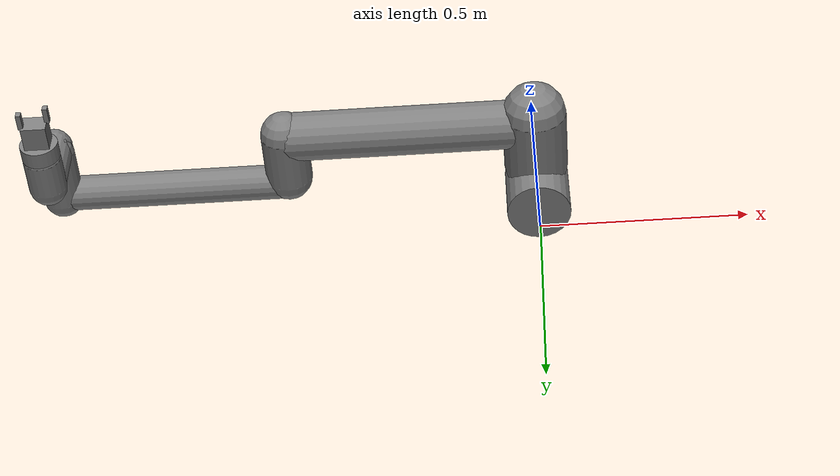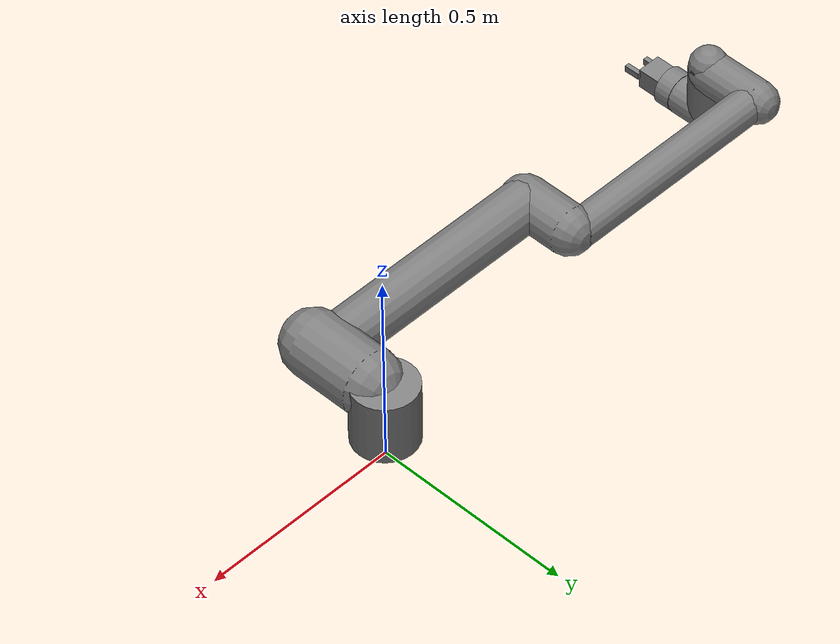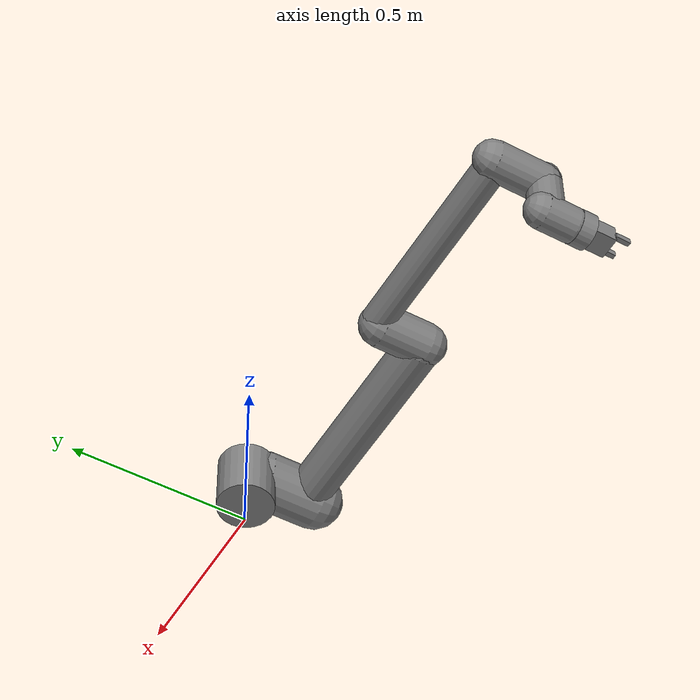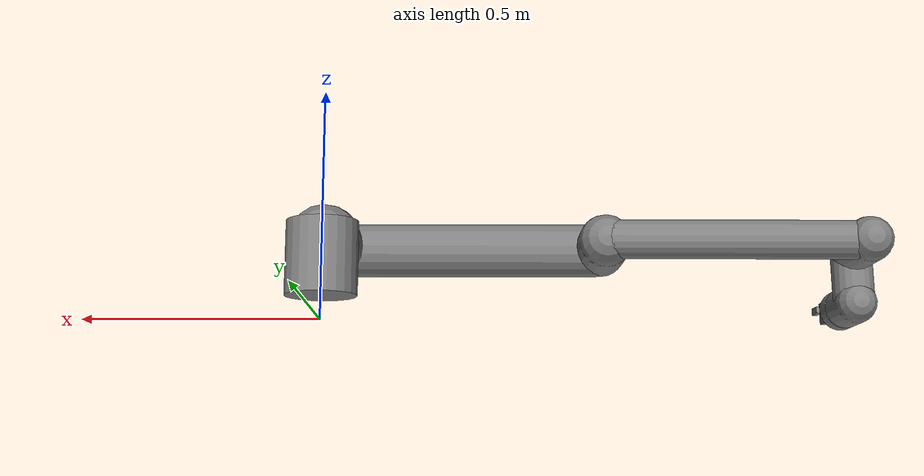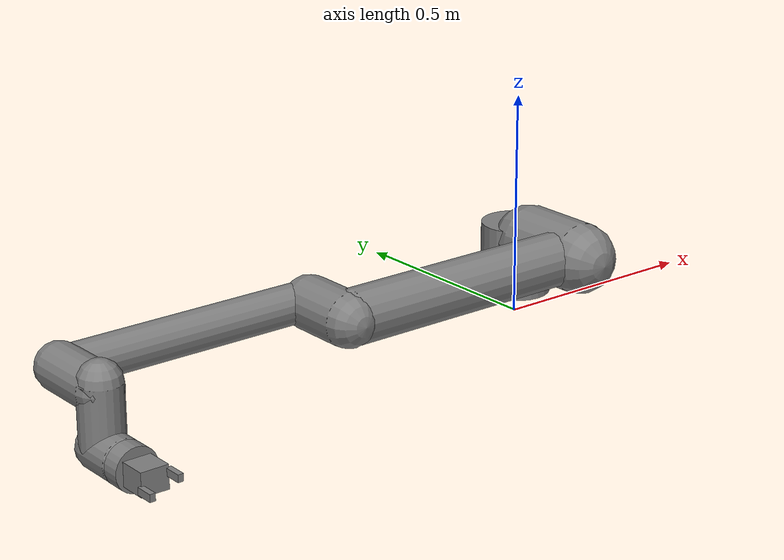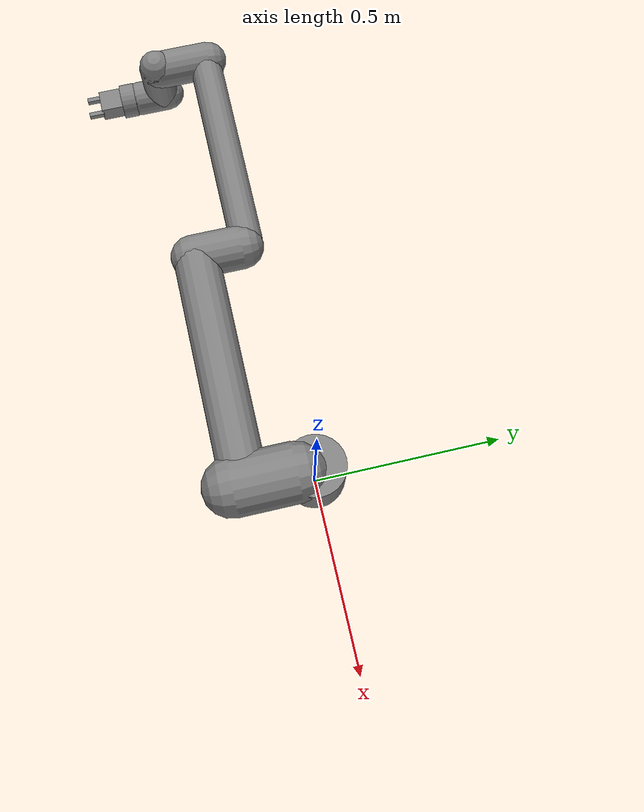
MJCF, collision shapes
<mujoco model="ur10e_with_gripper_eval">
  <!-- VERSI VALIDASI: mesh visual penuh (contype=0) + primitif fisika IDENTIK dgn ur10e_train.xml.
       Lantai/skybox ada di scene_eval.xml. -->
  <compiler angle="radian" meshdir="assets" autolimits="true"/>

  <option integrator="implicitfast"/>

  <default>
    <default class="ur10e">
      <material specular="0.5" shininess="0.25"/>
      <joint axis="0 1 0" range="-6.28319 6.28319" armature="0.1"/>
      <position ctrlrange="-6.2831 6.2831"/>
      <general biastype="affine" ctrlrange="-6.2831 6.2831" gainprm="5000" biasprm="0 -5000 -500"/>
      <default class="size4">
        <joint damping="10"/>
        <general forcerange="-330 330"/>
      </default>
      <default class="size3">
        <joint damping="5"/>
        <general forcerange="-150 150"/>
        <default class="size3_limited">
          <joint range="-3.1415 3.1415"/>
          <general ctrlrange="-3.1415 3.1415"/>
        </default>
      </default>
      <default class="size2">
        <joint damping="2"/>
        <general forcerange="-56 56"/>
      </default>
      <default class="visual">
        <geom type="mesh" contype="0" conaffinity="0" group="2"/>
      </default>
      <default class="collision">
        <geom type="capsule" group="3"/>
        <default class="eef_collision">
          <geom type="cylinder"/>
        </default>
      </default>
      <site size="0.001" rgba="0.5 0.5 0.5 0.3" group="4"/>
    </default>
  </default>

  <asset>
    <!-- Material UR10e -->
    <material class="ur10e" name="black" rgba="0.033 0.033 0.033 1"/>
    <material class="ur10e" name="jointgray" rgba="0.278 0.278 0.278 1"/>
    <material class="ur10e" name="linkgray" rgba="0.82 0.82 0.82 1"/>
    <material class="ur10e" name="urblue" rgba="0.49 0.678 0.8 1"/>

    <!-- Mesh UR10e -->
    <mesh file="base_0.obj"/>
    <mesh file="base_1.obj"/>
    <mesh file="shoulder_0.obj"/>
    <mesh file="shoulder_1.obj"/>
    <mesh file="shoulder_2.obj"/>
    <mesh file="upperarm_0.obj"/>
    <mesh file="upperarm_1.obj"/>
    <mesh file="upperarm_2.obj"/>
    <mesh file="upperarm_3.obj"/>
    <mesh file="forearm_0.obj"/>
    <mesh file="forearm_1.obj"/>
    <mesh file="forearm_2.obj"/>
    <mesh file="forearm_3.obj"/>
    <mesh file="wrist1_0.obj"/>
    <mesh file="wrist1_1.obj"/>
    <mesh file="wrist1_2.obj"/>
    <mesh file="wrist2_0.obj"/>
    <mesh file="wrist2_1.obj"/>
    <mesh file="wrist2_2.obj"/>
    <mesh file="wrist3.obj"/>

    <!-- Mesh Gripper -->
    <mesh name="slide-left-v1" file="slide-left-v1.stl" scale="0.001 0.001 0.001"/>
    <mesh name="slide-right-v3" file="slide-right-v3.stl" scale="0.001 0.001 0.001"/>
    <mesh name="Servo-v1" file="Servo-v1.stl" scale="0.001 0.001 0.001"/>

  </asset>

  <worldbody>
    <light name="spotlight" mode="targetbodycom" target="wrist_2_link" pos="0 -1 2"/>

    <body name="base" gravcomp="1" quat="0 0 0 -1" childclass="ur10e">

      <inertial mass="4.0" pos="0 0 0" diaginertia="0.0061063308908 0.0061063308908 0.01125"/>
      <geom mesh="base_0" material="black" class="visual"/>
      <geom mesh="base_1" material="jointgray" class="visual"/>

      <body name="shoulder_link" gravcomp="1" pos="0 0 0.181">
        <inertial pos="0 0 0" mass="7.778" diaginertia="0.0314743 0.0314743 0.0218756"/>
        <joint name="shoulder_pan_joint" class="size4" axis="0 0 1"/>
        <geom mesh="shoulder_0" material="urblue" class="visual"/>
        <geom mesh="shoulder_1" material="black" class="visual"/>
        <geom mesh="shoulder_2" material="jointgray" class="visual"/>
        <geom class="collision" type="cylinder" size="0.078 0.08" pos="0 0 -0.05"/>

        <body name="upper_arm_link" gravcomp="1" pos="0 0.176 0" quat="1 0 1 0">
          <inertial pos="0 0 0.3065" mass="12.93" diaginertia="0.423074 0.423074 0.0363656"/>
          <joint name="shoulder_lift_joint" class="size4"/>
          <geom mesh="upperarm_0" material="black" class="visual"/>
          <geom mesh="upperarm_1" material="jointgray" class="visual"/>
          <geom mesh="upperarm_2" material="urblue" class="visual"/>
          <geom mesh="upperarm_3" material="linkgray" class="visual"/>
          <geom class="collision" pos="0 -0.05 0" quat="1 1 0 0" size="0.078 0.08"/>
          <geom class="collision" size="0.06 0.3" pos="0 0 0.3"/>

          <body name="forearm_link" gravcomp="1" pos="0 -0.137 0.613">
            <inertial pos="0 0 0.2855" mass="3.87" diaginertia="0.11059 0.11059 0.0108844"/>
            <joint name="elbow_joint" class="size3_limited"/>
            <geom mesh="forearm_0" material="urblue" class="visual"/>
            <geom mesh="forearm_1" material="black" class="visual"/>
            <geom mesh="forearm_2" material="jointgray" class="visual"/>
            <geom mesh="forearm_3" material="linkgray" class="visual"/>
            <geom class="collision" pos="0 0.08 0" quat="1 1 0 0" size="0.058 0.065"/>
            <geom class="collision" size="0.043 0.28" pos="0 0 0.29"/>

            <body name="wrist_1_link" gravcomp="1" pos="0 0 0.571" quat="1 0 1 0">
              <inertial pos="0 0.135 0" quat="0.5 0.5 -0.5 0.5" mass="1.96"
                diaginertia="0.0055125 0.00510825 0.00510825"/>
              <joint name="wrist_1_joint" class="size2"/>
              <geom mesh="wrist1_0" material="black" class="visual"/>
              <geom mesh="wrist1_1" material="urblue" class="visual"/>
              <geom mesh="wrist1_2" material="jointgray" class="visual"/>
              <geom class="collision" pos="0 0.06 0" quat="1 1 0 0" size="0.05 0.07"/>

              <body name="wrist_2_link" gravcomp="1" pos="0 0.135 0">
                <inertial pos="0 0 0.12" quat="0.5 0.5 -0.5 0.5" mass="1.96"
                  diaginertia="0.0055125 0.00510825 0.00510825"/>
                <joint name="wrist_2_joint" axis="0 0 1" class="size2"/>
                <geom mesh="wrist2_0" material="black" class="visual"/>
                <geom mesh="wrist2_1" material="urblue" class="visual"/>
                <geom mesh="wrist2_2" material="jointgray" class="visual"/>
                <geom class="collision" size="0.046 0.065" pos="0 0 0.05"/>
                <geom class="collision" pos="0 0.028 0.12" quat="1 1 0 0" size="0.046 0.043"/>

                <!-- JOINT KE-6 (WRIST 3 / END EFFECTOR) -->
                <body name="wrist_3_link" gravcomp="1" pos="0 0 0.12">
                  <inertial pos="0 0.092 0" quat="0 1 -1 0" mass="0.202"
                    diaginertia="0.000204525 0.000144346 0.000144346"/>
                  <joint name="wrist_3_joint" class="size2"/>
                  <geom material="linkgray" mesh="wrist3" class="visual"/>
                  <geom class="eef_collision" pos="0 0.097 0" quat="1 1 0 0" size="0.046 0.02"/>
                  <site name="attachment_site" pos="0 0.1 0" quat="-1 1 0 0"/>

                  <!-- GRIPPER ASSEMBLY -->
                  <body name="Servo-v1" gravcomp="1" pos="0 0.1 0" quat="-1 1 0 0">
                    <geom name="Servo-v1_geom" mesh="Servo-v1" class="visual" material="black"/>
                    <geom class="collision" type="box" size="0.03 0.025 0.04" pos="0 0 0.037"/>
                    <inertial mass="3.424" pos="0 0 0.037" fullinertia="0.0027 0.0042 0.0035 0 0 0" />
                    <!-- titik referensi TCP (tool center point), sama seperti di ur10e_train.xml -->
                    <site name="tcp_site" pos="0 0 0.10" size="0.004" rgba="1 0 0 1"/>

                    <!-- Finger Kanan -->
                    <body name="slide-right-v3" gravcomp="1" pos="-0.0223 -0.0178 0.0739" euler="0 0 3.14159">
                      <inertial mass="0.210" pos="0.007 -0.0075 0.020" fullinertia="0.0001 0.0001 0.00005 0 0 0" />
                      <joint name="Servo-v1_Slider-1" type="slide" axis="1 0 0" range="0 0.025" damping="0.5"/>
                      <geom name="slide-right-v3_geom" mesh="slide-right-v3" class="visual" material="jointgray"/>
                      <geom class="collision" type="box" size="0.006 0.008 0.02" pos="0.007 -0.0075 0.020"/>
                    </body>

                    <!-- Finger Kiri -->
                    <body name="slide-left-v1" gravcomp="1" pos="0.0242 0.0178 0.0739" euler="0 0 0">
                      <inertial mass="0.210" pos="0.007 -0.0075 0.020" fullinertia="0.0001 0.0001 0.00005 0 0 0" />
                      <joint name="Servo-v1_Slider-2" type="slide" axis="1 0 0" range="0 0.025" damping="0.5"/>
                      <geom name="slide-left-v1_geom" mesh="slide-left-v1" class="visual" material="jointgray"/>
                      <geom class="collision" type="box" size="0.006 0.008 0.02" pos="0.007 -0.0075 0.020"/>
                    </body>
                  </body>

                </body>
              </body>
            </body>
          </body>
        </body>
      </body>
    </body>
  </worldbody>

  <!-- Sinkronisasi Kaku & Responsif Antar Kedua Joint Capit -->
  <equality>
    <joint joint1="Servo-v1_Slider-1" joint2="Servo-v1_Slider-2" polycoef="0 1 0 0 0" solref="0.002 1" solimp="0.95 0.99 0.001 0.5 2"/>
  </equality>

  <actuator>
    <general class="size4" name="shoulder_pan" joint="shoulder_pan_joint"/>
    <general class="size4" name="shoulder_lift" joint="shoulder_lift_joint"/>
    <general class="size3_limited" name="elbow" joint="elbow_joint"/>
    <general class="size2" name="wrist_1" joint="wrist_1_joint"/>
    <general class="size2" name="wrist_2" joint="wrist_2_joint"/>
    <general class="size2" name="wrist_3" joint="wrist_3_joint"/>

    <!-- Kontrol Utama Gripper -->
    <position name="gripper_actuator" joint="Servo-v1_Slider-1" ctrlrange="-2 0" kp="300"/>
  </actuator>

  <keyframe>
    <key name="home" qpos="-1.5708 -1.5708 1.5708 -1.5708 -1.5708 0 0 0" ctrl="-1.5708 -1.5708 1.5708 -1.5708 -1.5708 0 0"/>
  </keyframe>
</mujoco>
